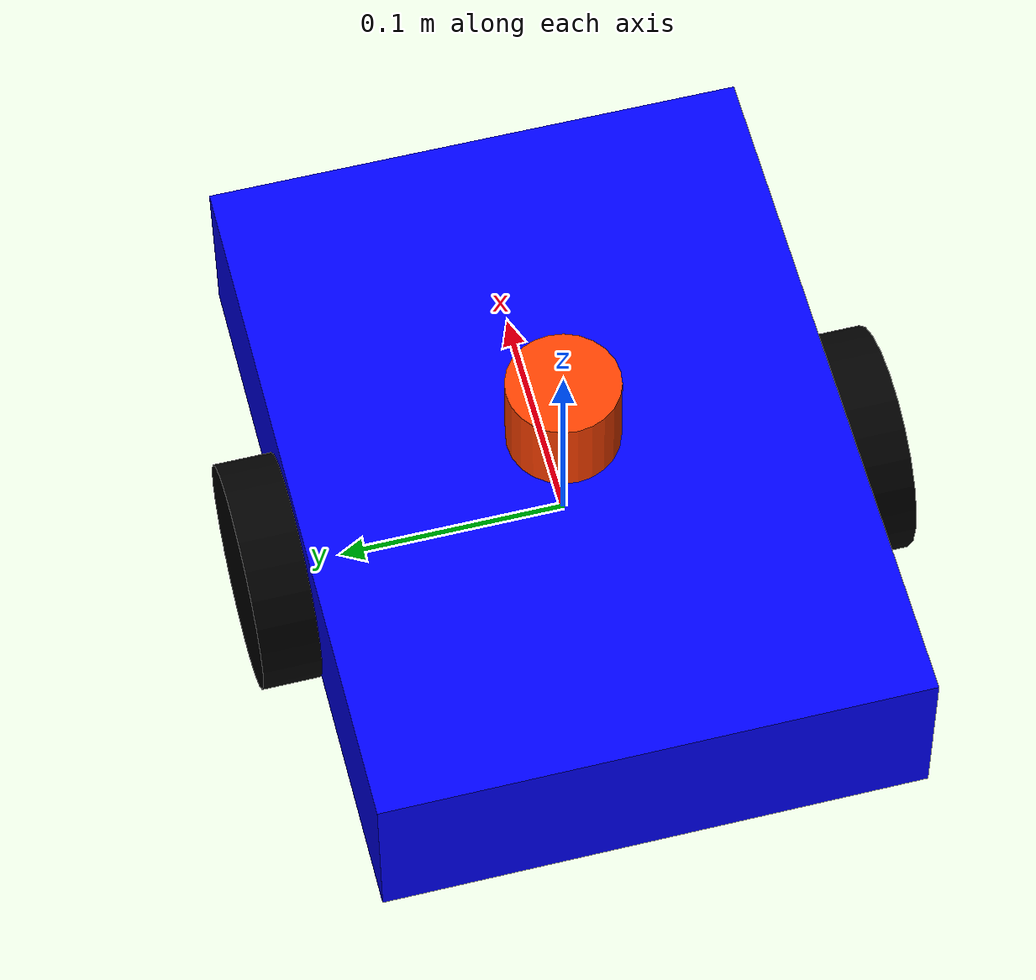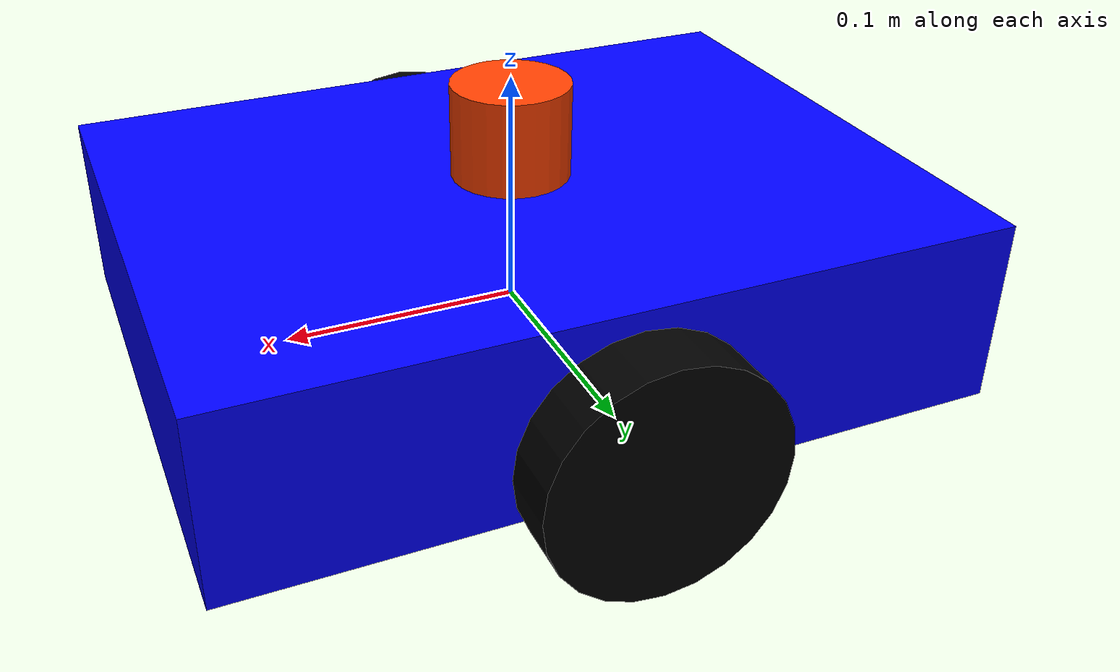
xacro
<?xml version="1.0"?>
<robot xmlns:xacro="http://www.ros.org/wiki/xacro"  name="robot">

    <xacro:arg name="robot_name" default=""/>
    <xacro:property name="robot_name" value="$(arg robot_name)"/>
    <xacro:property name="frame_prefix" value="${'' if robot_name == '' else robot_name + '/'}"/>

    <xacro:arg name="use_ros2_control" default="true"/>
    <xacro:property name="use_ros2_control" value="$(arg use_ros2_control)"/>

    <!-- Robot_frames -->
    <xacro:include filename = "robot_main.xacro" />

    <!-- Controls -->
    <xacro:if value="${use_ros2_control}">
        <xacro:include filename = "ros2_controller.xacro" />
    </xacro:if>
    <xacro:unless value="${use_ros2_control}">
        <xacro:include filename = "gz_diff_drive.xacro" />
    </xacro:unless>

    <!-- Sensors -->
    <xacro:include filename = "lidar.xacro" />

</robot>

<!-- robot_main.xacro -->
<robot xmlns:xacro="http://www.ros.org/wiki/xacro">

    <xacro:include filename = "inertial_macros.xacro" />

    <xacro:property name="chassis_length"           value="0.320"/>
    <xacro:property name="chassis_width"            value="0.240"/>
    <xacro:property name="chassis_height"           value="0.078"/>
    <xacro:property name="chassis_mass"             value="0.700"/>

    <xacro:property name="wheel_radius"             value="0.05"/>
    <xacro:property name="wheel_thickness"          value="0.026"/>
    <xacro:property name="wheel_mass"               value="0.050"/>
    <xacro:property name="wheel_offset_x"           value="${chassis_length/2}"/>
    <xacro:property name="wheel_offset_y"           value="0.133"/>
    <xacro:property name="wheel_offset_z"           value="0.020"/>

    <xacro:property name="caster_wheel_radius"      value="${wheel_radius - wheel_offset_z}"/>
    <xacro:property name="caster_wheel_mass"        value="0.010"/>
    <!-- inset from each chassis edge by (caster radius + margin) so the caster stays hidden under the body -->
    <xacro:property name="caster_wheel_margin"      value="0.01"/>
    <xacro:property name="caster_wheel_offset_front" value="${chassis_length - caster_wheel_radius - caster_wheel_margin}"/>
    <xacro:property name="caster_wheel_offset_rear"  value="${caster_wheel_radius + caster_wheel_margin}"/>

    <!-- Colors -->
    <material name="white">
        <color rgba= "1 1 1 1"/>
    </material>

    <material name="black">
        <color rgba= "0 0 0 1"/>
    </material>

    <material name= "orange">
        <color rgba= "1 0.25 0 1"/>
    </material>

    <material name="cyan">
        <color rgba= "0 1 1 1"/>
    </material>

    <material name="indigo">
        <color rgba= "0.294 0 0.51 1"/>
    </material>

    <material name="blue">
        <color rgba= "0 0 1 1"/>
    </material>

    <!-- convention (except base_link): joint followed by link -->
    <!-- base_link -->
    <link name="base_link">
    </link>

    <!-- base_footprint -->
    <joint name="base_footprint_joint" type="fixed">
        <parent link= "base_link"/>
        <child link= "base_footprint"/>
        <origin xyz= "0 0 0" rpy= "0 0 0"/>
    </joint>

    <link name="base_footprint">
    </link>

    <!-- chasis -->
    <joint name="chasis_joint" type="fixed">
        <parent link= "base_link"/>
        <child link= "chasis"/>
        <origin xyz= "${-wheel_offset_x} 0 ${-wheel_offset_z}"/>
    </joint>

    <link name="chasis">
        <visual>
            <origin xyz= "${chassis_length/2} 0 ${chassis_height/2}" rpy= "0 0 0"/>
            <geometry>
                <box size = "${chassis_length} ${chassis_width} ${chassis_height}"/>
            </geometry>
            <material name= "blue"/>
        </visual>
        <collision>
            <origin xyz= "${chassis_length/2} 0 ${chassis_height/2}" rpy= "0 0 0"/>
            <geometry>
                <box size = "${chassis_length} ${chassis_width} ${chassis_height}"/>
            </geometry>
        </collision>
        <xacro:inertial_box mass= "0.5" x="${chassis_length}" y="${chassis_width}" z="${chassis_height}">
            <origin xyz= "${chassis_length/2} 0 ${chassis_height/2}" rpy= "0 0 0"/>
        </xacro:inertial_box>
    </link>

    <gazebo reference="chasis">
        <material>
            <ambient>0 0 1 1</ambient>
            <diffuse>0 0 1 1</diffuse>
        </material>
    </gazebo>

    <!-- left_wheel -->
    <joint name="left_wheel_joint" type="continuous">
        <parent link= "base_link"/>
        <child link= "left_wheel"/>
        <origin xyz= "0 ${wheel_offset_y} 0" rpy = "${-pi/2} 0 0"/>
        <axis xyz= "0 0 1"/>
    </joint>

    <link name="left_wheel">
        <visual>
            <geometry>
                <cylinder radius = "${wheel_radius}" length= "${wheel_thickness}"/>
            </geometry>
            <material name= "black"/>
        </visual>
        <collision>
            <geometry>
                <sphere radius = "${wheel_radius}" />
            </geometry>
        </collision>
        <xacro:inertial_cylinder mass = "${wheel_mass}" radius= "${wheel_radius}" length= "${wheel_thickness}">
            <origin xyz= "0 0 0" rpy= "0 0 0"/>
        </xacro:inertial_cylinder>
    </link>

    <gazebo reference="left_wheel">
        <material>
            <ambient>0 0 0 1</ambient>
            <diffuse>0 0 0 1</diffuse>
        </material>
    </gazebo>

    <!-- right_wheel -->
    <joint name="right_wheel_joint" type="continuous">
        <parent link= "base_link"/>
        <child link= "right_wheel"/>
        <origin xyz= "0 ${-wheel_offset_y} 0" rpy = "${-pi/2} 0 0"/>
        <axis xyz= "0 0 1"/>
    </joint>

    <link name="right_wheel">
        <visual>
            <geometry>
                <cylinder radius = "${wheel_radius}" length= "${wheel_thickness}"/>
            </geometry>
            <material name= "black"/>
        </visual>
        <collision>
            <geometry>
                <sphere radius = "${wheel_radius}" />
            </geometry>
        </collision>
        <xacro:inertial_cylinder mass = "${wheel_mass}" radius= "${wheel_radius}" length= "${wheel_thickness}">
            <origin xyz= "0 0 0" rpy= "0 0 0"/>
        </xacro:inertial_cylinder>
    </link>

    <gazebo reference="right_wheel">
        <material>
            <ambient>0 0 0 1</ambient>
            <diffuse>0 0 0 1</diffuse>
        </material>
    </gazebo>

    <!-- caster_wheel_front -->
    <joint name="caster_wheel_front_joint" type="fixed">
        <parent link= "chasis"/>
        <child link= "caster_wheel_front"/>
        <origin xyz= "${caster_wheel_offset_front} 0 0"/>
    </joint>

    <link name="caster_wheel_front">
        <visual>
            <geometry>
                <sphere radius = "${caster_wheel_radius}"/>
            </geometry>
            <material name= "orange"/>
        </visual>
        <collision>
            <geometry>
                <sphere radius = "${caster_wheel_radius}"/>
            </geometry>
        </collision>
        <xacro:inertial_sphere mass= "${caster_wheel_mass}" radius= "${caster_wheel_radius}">
            <origin xyz= "0 0 0" rpy= "0 0 0"/>
        </xacro:inertial_sphere>
    </link>

    <gazebo reference="caster_wheel_front">
        <material>
            <ambient>1 0.25 0 1</ambient>
            <diffuse>1 0.25 0 1</diffuse>
        </material>
        <mu1 value= "0.0001"/>
        <mu2 value= "0.0001"/>
    </gazebo>

    <!-- caster_wheel_rear -->
    <joint name="caster_wheel_rear_joint" type="fixed">
        <parent link= "chasis"/>
        <child link= "caster_wheel_rear"/>
        <origin xyz= "${caster_wheel_offset_rear} 0 0"/>
    </joint>

    <link name="caster_wheel_rear">
        <visual>
            <geometry>
                <sphere radius = "${caster_wheel_radius}"/>
            </geometry>
            <material name= "orange"/>
        </visual>
        <collision>
            <geometry>
                <sphere radius = "${caster_wheel_radius}"/>
            </geometry>
        </collision>
        <xacro:inertial_sphere mass= "${caster_wheel_mass}" radius= "${caster_wheel_radius}">
            <origin xyz= "0 0 0" rpy= "0 0 0"/>
        </xacro:inertial_sphere>
    </link>

    <gazebo reference="caster_wheel_rear">
        <material>
            <ambient>1 0.25 0 1</ambient>
            <diffuse>1 0.25 0 1</diffuse>
        </material>
        <mu1 value= "0.0001"/>
        <mu2 value= "0.0001"/>
    </gazebo>

</robot>

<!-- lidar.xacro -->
<robot xmlns:xacro="http://www.ros.org/wiki/xacro" name="robot">

    <xacro:property name="lidar_radius"             value="0.025"/>
    <xacro:property name="lidar_thickness"          value="0.040"/>
    <xacro:property name="lidar_offset_x"           value="${chassis_length/2}"/>
    <xacro:property name="lidar_offset_z"           value="0.098"/>

    <!-- Lidar -->
    <joint name="lidar_joint" type="fixed">
        <parent link="chasis"/>
        <child link="lidar_frame"/>
        <origin xyz="${lidar_offset_x} 0.0 ${lidar_offset_z}" rpy="0 0 ${pi}"/>
    </joint>

    <link name="lidar_frame">
        <visual>
            <geometry>
                <cylinder radius="${lidar_radius}" length="${lidar_thickness}"/>
            </geometry>
            <material name="orange"/>
        </visual>
        <collision>
            <geometry>
                <cylinder radius="${lidar_radius}" length="${lidar_thickness}"/>
            </geometry>
        </collision>
        <xacro:inertial_cylinder mass="0.1" radius="${lidar_radius}" length="${lidar_thickness}">
            <origin xyz="0 0 0" rpy="0 0 0"/>
        </xacro:inertial_cylinder>
    </link>

    <!-- Lidar in gazebo-->
    <gazebo reference="lidar_frame">
        <sensor name="lidar" type="gpu_lidar">

            <gz_frame_id>lidar_frame</gz_frame_id>
            <pose>0 0 0 0 0 0</pose>
            <topic>${frame_prefix}scan</topic>
            <update_rate>10</update_rate>
            <always_on>1</always_on>
            <visualize>true</visualize>

            <lidar>
                <scan>
                    <horizontal>
                        <samples>360</samples>
                        <resolution>1</resolution>
                        <min_angle>-3.14159</min_angle>
                        <max_angle>3.14159</max_angle>
                    </horizontal>
                    <vertical>
                        <samples>1</samples>
                        <resolution>0.1</resolution>
                        <min_angle>0.</min_angle>
                        <max_angle>0.</max_angle>
                    </vertical>
                </scan>
                <range>
                    <min>0.08</min>
                    <max>10.0</max>
                    <resolution>0.01</resolution>
                </range>
                <noise>
                    <type>gaussian</type>
                    <mean>0.0</mean>
                    <stddev>0.01</stddev>
                </noise>
            </lidar>

        </sensor>
    </gazebo>
</robot>
